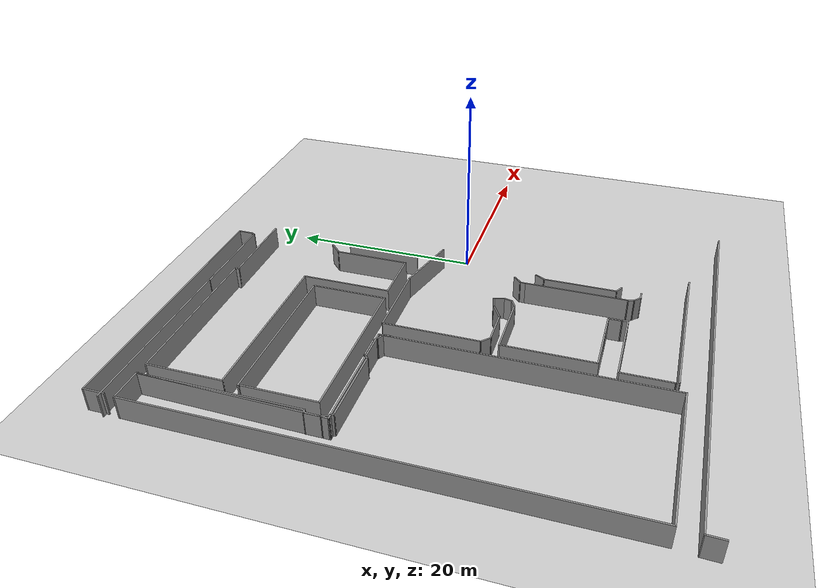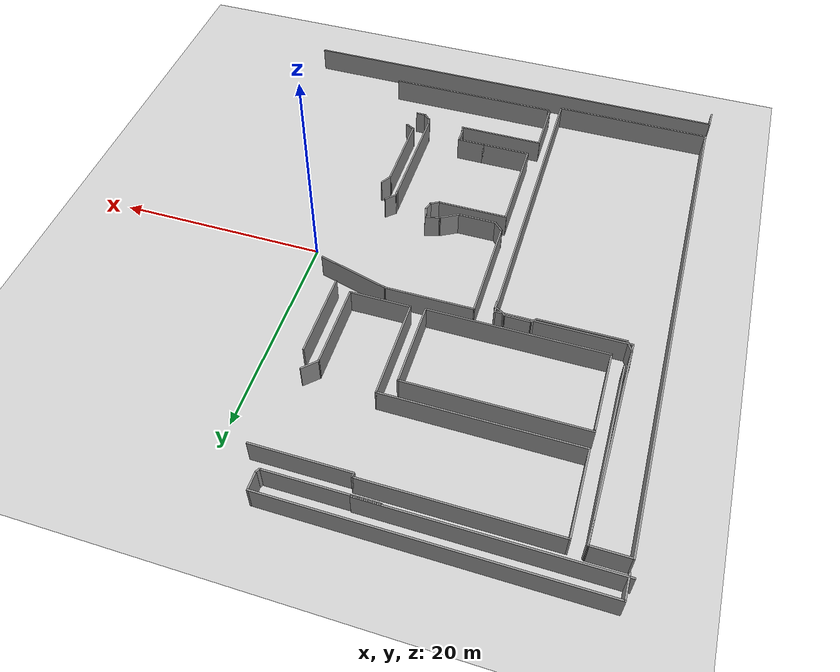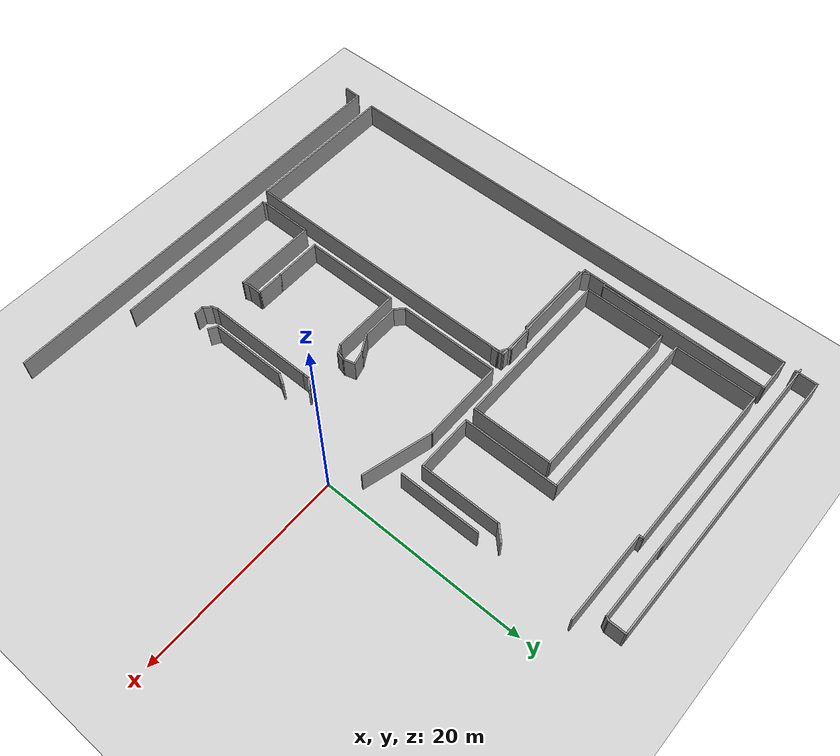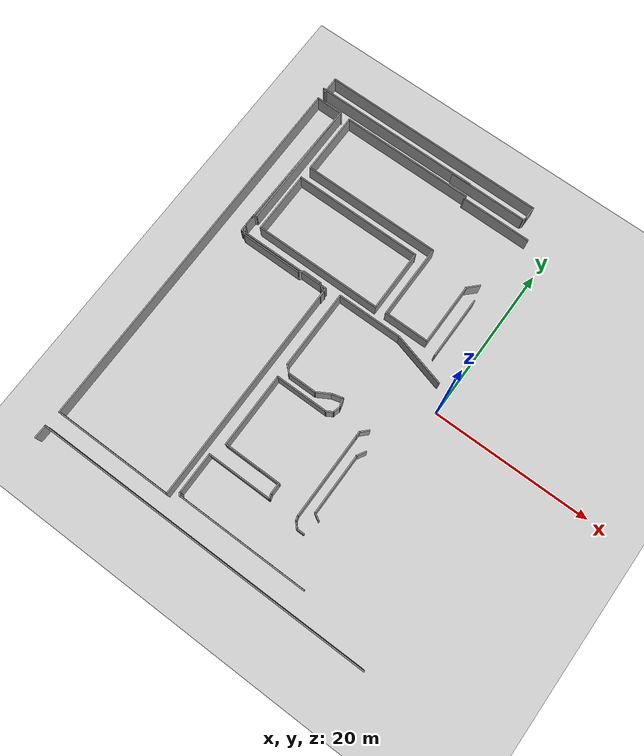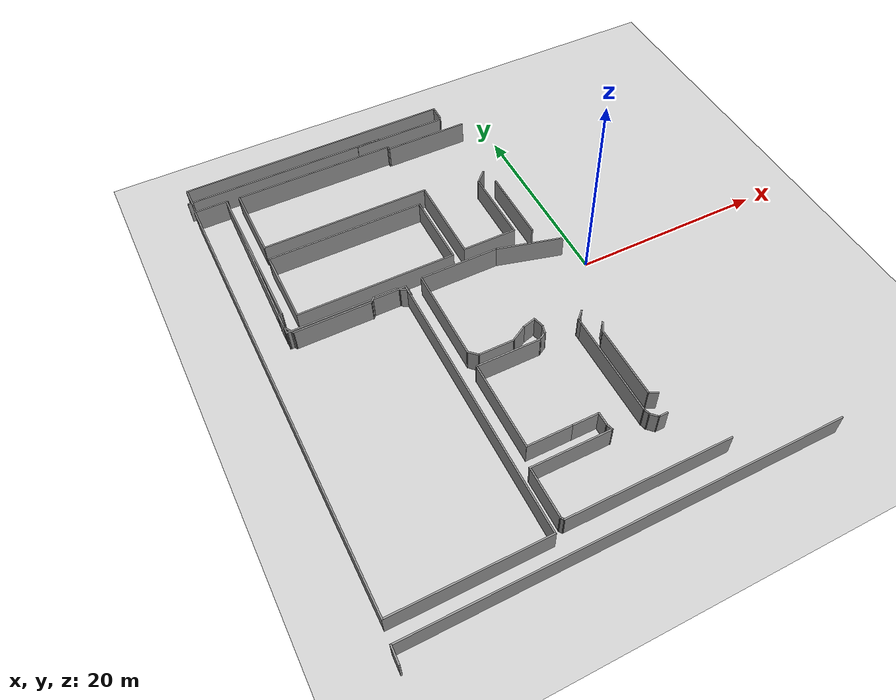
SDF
<sdf version="1.7">
 <world name="default">
  <model name="ground_plane">
   <static>1</static>
   <link name="link">
    <collision name="collision">
     <geometry><plane><normal>0 0 1</normal><size>100 100</size></plane></geometry>
     <surface><friction><ode><mu>100</mu><mu2>50</mu2></ode></friction></surface>
    </collision>
    <visual name="visual">
     <cast_shadows>0</cast_shadows>
     <geometry><plane><normal>0 0 1</normal><size>100 100</size></plane></geometry>
     <material>
      <script><uri>file://media/materials/scripts/gazebo.material</uri><name>Gazebo/Grey</name></script>
     </material>
    </visual>
   </link>
  </model>
  <model name="picture7">
   <pose>-0.026123 -1.16756 0 0 -0 0</pose>
   <link name="Wall_105">
    <collision name="Wall_105_Collision">
     <geometry><box><size>43 0.15 2.5</size></box></geometry>
     <pose>0 0 1.25 0 -0 0</pose>
    </collision>
    <visual name="Wall_105_Visual">
     <pose>0 0 1.25 0 -0 0</pose>
     <geometry><box><size>43 0.15 2.5</size></box></geometry>
     <material>
      <script><uri>file://media/materials/scripts/gazebo.material</uri><name>Gazebo/Grey</name></script>
      <ambient>1 1 1 1</ambient>
     </material>
     <meta><layer>0</layer></meta>
    </visual>
    <pose>-12.0825 -25.8744 0 0 -0 3.14159</pose>
   </link>
   <link name="Wall_106">
    <collision name="Wall_106_Collision">
     <geometry><box><size>1.75078 0.15 2.5</size></box></geometry>
     <pose>0 0 1.25 0 -0 0</pose>
    </collision>
    <visual name="Wall_106_Visual">
     <pose>0 0 1.25 0 -0 0</pose>
     <geometry><box><size>1.75078 0.15 2.5</size></box></geometry>
     <material>
      <script><uri>file://media/materials/scripts/gazebo.material</uri><name>Gazebo/Grey</name></script>
      <ambient>1 1 1 1</ambient>
     </material>
     <meta><layer>0</layer></meta>
    </visual>
    <pose>-33.5325 -26.6744 0 0 -0 -1.60204</pose>
   </link>
   <link name="Wall_108">
    <collision name="Wall_108_Collision">
     <geometry><box><size>10 0.15 2.5</size></box></geometry>
     <pose>0 0 1.25 0 -0 0</pose>
    </collision>
    <visual name="Wall_108_Visual">
     <pose>0 0 1.25 0 -0 0</pose>
     <geometry><box><size>10 0.15 2.5</size></box></geometry>
     <material>
      <script><uri>file://media/materials/scripts/gazebo.material</uri><name>Gazebo/Grey</name></script>
      <ambient>1 1 1 1</ambient>
     </material>
     <meta><layer>0</layer></meta>
    </visual>
    <pose>-16.402 0.329792 0 0 -0 -1.5708</pose>
   </link>
   <link name="Wall_109">
    <collision name="Wall_109_Collision">
     <geometry><box><size>1.25 0.15 2.5</size></box></geometry>
     <pose>0 0 1.25 0 -0 0</pose>
    </collision>
    <visual name="Wall_109_Visual">
     <pose>0 0 1.25 0 -0 0</pose>
     <geometry><box><size>1.25 0.15 2.5</size></box></geometry>
     <material>
      <script><uri>file://media/materials/scripts/gazebo.material</uri><name>Gazebo/Grey</name></script>
      <ambient>1 1 1 1</ambient>
     </material>
     <meta><layer>0</layer></meta>
    </visual>
    <pose>-16.0131 -4.98412 0 0 -0 -0.785398</pose>
   </link>
   <link name="Wall_11">
    <collision name="Wall_11_Collision">
     <geometry><box><size>3.5 0.15 2.5</size></box></geometry>
     <pose>0 0 1.25 0 -0 0</pose>
    </collision>
    <visual name="Wall_11_Visual">
     <pose>0 0 1.25 0 -0 0</pose>
     <geometry><box><size>3.5 0.15 2.5</size></box></geometry>
     <material>
      <script><uri>file://media/materials/scripts/gazebo.material</uri><name>Gazebo/Grey</name></script>
      <ambient>1 1 1 1</ambient>
     </material>
     <meta><layer>0</layer></meta>
    </visual>
    <pose>-31.6293 24.0535 0 0 -0 0</pose>
   </link>
   <link name="Wall_110">
    <collision name="Wall_110_Collision">
     <geometry><box><size>3.75 0.15 2.5</size></box></geometry>
     <pose>0 0 1.25 0 -0 0</pose>
    </collision>
    <visual name="Wall_110_Visual">
     <pose>0 0 1.25 0 -0 0</pose>
     <geometry><box><size>3.75 0.15 2.5</size></box></geometry>
     <material>
      <script><uri>file://media/materials/scripts/gazebo.material</uri><name>Gazebo/Grey</name></script>
      <ambient>1 1 1 1</ambient>
     </material>
     <meta><layer>0</layer></meta>
    </visual>
    <pose>-13.8242 -5.37303 0 0 -0 0</pose>
   </link>
   <link name="Wall_111">
    <collision name="Wall_111_Collision">
     <geometry><box><size>2 0.15 2.5</size></box></geometry>
     <pose>0 0 1.25 0 -0 0</pose>
    </collision>
    <visual name="Wall_111_Visual">
     <pose>0 0 1.25 0 -0 0</pose>
     <geometry><box><size>2 0.15 2.5</size></box></geometry>
     <material>
      <script><uri>file://media/materials/scripts/gazebo.material</uri><name>Gazebo/Grey</name></script>
      <ambient>1 1 1 1</ambient>
     </material>
     <meta><layer>0</layer></meta>
    </visual>
    <pose>-11.2231 -4.91052 0 0 -0 0.523599</pose>
   </link>
   <link name="Wall_112">
    <collision name="Wall_112_Collision">
     <geometry><box><size>1.5 0.15 2.5</size></box></geometry>
     <pose>0 0 1.25 0 -0 0</pose>
    </collision>
    <visual name="Wall_112_Visual">
     <pose>0 0 1.25 0 -0 0</pose>
     <geometry><box><size>1.5 0.15 2.5</size></box></geometry>
     <material>
      <script><uri>file://media/materials/scripts/gazebo.material</uri><name>Gazebo/Grey</name></script>
      <ambient>1 1 1 1</ambient>
     </material>
     <meta><layer>0</layer></meta>
    </visual>
    <pose>-9.77003 -4.27332 0 0 -0 0.261799</pose>
   </link>
   <link name="Wall_113">
    <collision name="Wall_113_Collision">
     <geometry><box><size>1.25 0.15 2.5</size></box></geometry>
     <pose>0 0 1.25 0 -0 0</pose>
    </collision>
    <visual name="Wall_113_Visual">
     <pose>0 0 1.25 0 -0 0</pose>
     <geometry><box><size>1.25 0.15 2.5</size></box></geometry>
     <material>
      <script><uri>file://media/materials/scripts/gazebo.material</uri><name>Gazebo/Grey</name></script>
      <ambient>1 1 1 1</ambient>
     </material>
     <meta><layer>0</layer></meta>
    </visual>
    <pose>-8.97568 -4.62988 0 0 -0 -1.309</pose>
   </link>
   <link name="Wall_114">
    <collision name="Wall_114_Collision">
     <geometry><box><size>1 0.15 2.5</size></box></geometry>
     <pose>0 0 1.25 0 -0 0</pose>
    </collision>
    <visual name="Wall_114_Visual">
     <pose>0 0 1.25 0 -0 0</pose>
     <geometry><box><size>1 0.15 2.5</size></box></geometry>
     <material>
      <script><uri>file://media/materials/scripts/gazebo.material</uri><name>Gazebo/Grey</name></script>
      <ambient>1 1 1 1</ambient>
     </material>
     <meta><layer>0</layer></meta>
    </visual>
    <pose>-8.94332 -5.57166 0 0 -0 -1.8326</pose>
   </link>
   <link name="Wall_115">
    <collision name="Wall_115_Collision">
     <geometry><box><size>1 0.15 2.5</size></box></geometry>
     <pose>0 0 1.25 0 -0 0</pose>
    </collision>
    <visual name="Wall_115_Visual">
     <pose>0 0 1.25 0 -0 0</pose>
     <geometry><box><size>1 0.15 2.5</size></box></geometry>
     <material>
      <script><uri>file://media/materials/scripts/gazebo.material</uri><name>Gazebo/Grey</name></script>
      <ambient>1 1 1 1</ambient>
     </material>
     <meta><layer>0</layer></meta>
    </visual>
    <pose>-9.42139 -6.19467 0 0 -0 -2.61799</pose>
   </link>
   <link name="Wall_116">
    <collision name="Wall_116_Collision">
     <geometry><box><size>6.75 0.15 2.5</size></box></geometry>
     <pose>0 0 1.25 0 -0 0</pose>
    </collision>
    <visual name="Wall_116_Visual">
     <pose>0 0 1.25 0 -0 0</pose>
     <geometry><box><size>6.75 0.15 2.5</size></box></geometry>
     <material>
      <script><uri>file://media/materials/scripts/gazebo.material</uri><name>Gazebo/Grey</name></script>
      <ambient>1 1 1 1</ambient>
     </material>
     <meta><layer>0</layer></meta>
    </visual>
    <pose>-13.0894 -6.40717 0 0 -0 3.14159</pose>
   </link>
   <link name="Wall_117">
    <collision name="Wall_117_Collision">
     <geometry><box><size>9.5 0.15 2.5</size></box></geometry>
     <pose>0 0 1.25 0 -0 0</pose>
    </collision>
    <visual name="Wall_117_Visual">
     <pose>0 0 1.25 0 -0 0</pose>
     <geometry><box><size>9.5 0.15 2.5</size></box></geometry>
     <material>
      <script><uri>file://media/materials/scripts/gazebo.material</uri><name>Gazebo/Grey</name></script>
      <ambient>1 1 1 1</ambient>
     </material>
     <meta><layer>0</layer></meta>
    </visual>
    <pose>-16.3894 -11.0822 0 0 -0 -1.5708</pose>
   </link>
   <link name="Wall_118">
    <collision name="Wall_118_Collision">
     <geometry><box><size>4.75 0.15 2.5</size></box></geometry>
     <pose>0 0 1.25 0 -0 0</pose>
    </collision>
    <visual name="Wall_118_Visual">
     <pose>0 0 1.25 0 -0 0</pose>
     <geometry><box><size>4.75 0.15 2.5</size></box></geometry>
     <material>
      <script><uri>file://media/materials/scripts/gazebo.material</uri><name>Gazebo/Grey</name></script>
      <ambient>1 1 1 1</ambient>
     </material>
     <meta><layer>0</layer></meta>
    </visual>
    <pose>-14.0894 -15.7572 0 0 -0 0</pose>
   </link>
   <link name="Wall_119">
    <collision name="Wall_119_Collision">
     <geometry><box><size>2.75 0.15 2.5</size></box></geometry>
     <pose>0 0 1.25 0 -0 0</pose>
    </collision>
    <visual name="Wall_119_Visual">
     <pose>0 0 1.25 0 -0 0</pose>
     <geometry><box><size>2.75 0.15 2.5</size></box></geometry>
     <material>
      <script><uri>file://media/materials/scripts/gazebo.material</uri><name>Gazebo/Grey</name></script>
      <ambient>1 1 1 1</ambient>
     </material>
     <meta><layer>0</layer></meta>
    </visual>
    <pose>-10.4894 -15.7572 0 0 -0 0</pose>
   </link>
   <link name="Wall_12">
    <collision name="Wall_12_Collision">
     <geometry><box><size>0.25 0.15 2.5</size></box></geometry>
     <pose>0 0 1.25 0 -0 0</pose>
    </collision>
    <visual name="Wall_12_Visual">
     <pose>0 0 1.25 0 -0 0</pose>
     <geometry><box><size>0.25 0.15 2.5</size></box></geometry>
     <material>
      <script><uri>file://media/materials/scripts/gazebo.material</uri><name>Gazebo/Grey</name></script>
      <ambient>1 1 1 1</ambient>
     </material>
     <meta><layer>0</layer></meta>
    </visual>
    <pose>-29.911 24.0285 0 0 -0 -0.523599</pose>
   </link>
   <link name="Wall_120">
    <collision name="Wall_120_Collision">
     <geometry><box><size>1.5 0.15 2.5</size></box></geometry>
     <pose>0 0 1.25 0 -0 0</pose>
    </collision>
    <visual name="Wall_120_Visual">
     <pose>0 0 1.25 0 -0 0</pose>
     <geometry><box><size>1.5 0.15 2.5</size></box></geometry>
     <material>
      <script><uri>file://media/materials/scripts/gazebo.material</uri><name>Gazebo/Grey</name></script>
      <ambient>1 1 1 1</ambient>
     </material>
     <meta><layer>0</layer></meta>
    </visual>
    <pose>-9.18944 -16.4322 0 0 -0 -1.5708</pose>
   </link>
   <link name="Wall_121">
    <collision name="Wall_121_Collision">
     <geometry><box><size>0.75 0.15 2.5</size></box></geometry>
     <pose>0 0 1.25 0 -0 0</pose>
    </collision>
    <visual name="Wall_121_Visual">
     <pose>0 0 1.25 0 -0 0</pose>
     <geometry><box><size>0.75 0.15 2.5</size></box></geometry>
     <material>
      <script><uri>file://media/materials/scripts/gazebo.material</uri><name>Gazebo/Grey</name></script>
      <ambient>1 1 1 1</ambient>
     </material>
     <meta><layer>0</layer></meta>
    </visual>
    <pose>-9.1118 -17.397 0 0 -0 -1.309</pose>
   </link>
   <link name="Wall_122">
    <collision name="Wall_122_Collision">
     <geometry><box><size>8.25 0.15 2.5</size></box></geometry>
     <pose>0 0 1.25 0 -0 0</pose>
    </collision>
    <visual name="Wall_122_Visual">
     <pose>0 0 1.25 0 -0 0</pose>
     <geometry><box><size>8.25 0.15 2.5</size></box></geometry>
     <material>
      <script><uri>file://media/materials/scripts/gazebo.material</uri><name>Gazebo/Grey</name></script>
      <ambient>1 1 1 1</ambient>
     </material>
     <meta><layer>0</layer></meta>
    </visual>
    <pose>-13.0842 -17.6867 0 0 -0 3.14159</pose>
   </link>
   <link name="Wall_123">
    <collision name="Wall_123_Collision">
     <geometry><box><size>5.25 0.15 2.5</size></box></geometry>
     <pose>0 0 1.25 0 -0 0</pose>
    </collision>
    <visual name="Wall_123_Visual">
     <pose>0 0 1.25 0 -0 0</pose>
     <geometry><box><size>5.25 0.15 2.5</size></box></geometry>
     <material>
      <script><uri>file://media/materials/scripts/gazebo.material</uri><name>Gazebo/Grey</name></script>
      <ambient>1 1 1 1</ambient>
     </material>
     <meta><layer>0</layer></meta>
    </visual>
    <pose>-17.1342 -20.2367 0 0 -0 -1.5708</pose>
   </link>
   <link name="Wall_124">
    <collision name="Wall_124_Collision">
     <geometry><box><size>0.5 0.15 2.5</size></box></geometry>
     <pose>0 0 1.25 0 -0 0</pose>
    </collision>
    <visual name="Wall_124_Visual">
     <pose>0 0 1.25 0 -0 0</pose>
     <geometry><box><size>0.5 0.15 2.5</size></box></geometry>
     <material>
      <script><uri>file://media/materials/scripts/gazebo.material</uri><name>Gazebo/Grey</name></script>
      <ambient>1 1 1 1</ambient>
     </material>
     <meta><layer>0</layer></meta>
    </visual>
    <pose>-17.0467 -22.9383 0 0 -0 -1.0472</pose>
   </link>
   <link name="Wall_125">
    <collision name="Wall_125_Collision">
     <geometry><box><size>16.75 0.15 2.5</size></box></geometry>
     <pose>0 0 1.25 0 -0 0</pose>
    </collision>
    <visual name="Wall_125_Visual">
     <pose>0 0 1.25 0 -0 0</pose>
     <geometry><box><size>16.75 0.15 2.5</size></box></geometry>
     <material>
      <script><uri>file://media/materials/scripts/gazebo.material</uri><name>Gazebo/Grey</name></script>
      <ambient>1 1 1 1</ambient>
     </material>
     <meta><layer>0</layer></meta>
    </visual>
    <pose>-8.65915 -23.0898 0 0 -0 0</pose>
   </link>
   <link name="Wall_131">
    <collision name="Wall_131_Collision">
     <geometry><box><size>1 0.15 2.5</size></box></geometry>
     <pose>0 0 1.25 0 -0 0</pose>
    </collision>
    <visual name="Wall_131_Visual">
     <pose>0 0 1.25 0 -0 0</pose>
     <geometry><box><size>1 0.15 2.5</size></box></geometry>
     <material>
      <script><uri>file://media/materials/scripts/gazebo.material</uri><name>Gazebo/Grey</name></script>
      <ambient>1 1 1 1</ambient>
     </material>
     <meta><layer>0</layer></meta>
    </visual>
    <pose>-4.29594 -18.4627 0 0 -0 3.14159</pose>
   </link>
   <link name="Wall_132">
    <collision name="Wall_132_Collision">
     <geometry><box><size>1 0.15 2.5</size></box></geometry>
     <pose>0 0 1.25 0 -0 0</pose>
    </collision>
    <visual name="Wall_132_Visual">
     <pose>0 0 1.25 0 -0 0</pose>
     <geometry><box><size>1 0.15 2.5</size></box></geometry>
     <material>
      <script><uri>file://media/materials/scripts/gazebo.material</uri><name>Gazebo/Grey</name></script>
      <ambient>1 1 1 1</ambient>
     </material>
     <meta><layer>0</layer></meta>
    </visual>
    <pose>-5.02146 -18.1622 0 0 -0 2.35619</pose>
   </link>
   <link name="Wall_133">
    <collision name="Wall_133_Collision">
     <geometry><box><size>0.75 0.15 2.5</size></box></geometry>
     <pose>0 0 1.25 0 -0 0</pose>
    </collision>
    <visual name="Wall_133_Visual">
     <pose>0 0 1.25 0 -0 0</pose>
     <geometry><box><size>0.75 0.15 2.5</size></box></geometry>
     <material>
      <script><uri>file://media/materials/scripts/gazebo.material</uri><name>Gazebo/Grey</name></script>
      <ambient>1 1 1 1</ambient>
     </material>
     <meta><layer>0</layer></meta>
    </visual>
    <pose>-5.39962 -17.5719 0 0 -0 1.8326</pose>
   </link>
   <link name="Wall_134">
    <collision name="Wall_134_Collision">
     <geometry><box><size>10.75 0.15 2.5</size></box></geometry>
     <pose>0 0 1.25 0 -0 0</pose>
    </collision>
    <visual name="Wall_134_Visual">
     <pose>0 0 1.25 0 -0 0</pose>
     <geometry><box><size>10.75 0.15 2.5</size></box></geometry>
     <material>
      <script><uri>file://media/materials/scripts/gazebo.material</uri><name>Gazebo/Grey</name></script>
      <ambient>1 1 1 1</ambient>
     </material>
     <meta><layer>0</layer></meta>
    </visual>
    <pose>-5.47727 -11.9821 0 0 -0 1.5708</pose>
   </link>
   <link name="Wall_135">
    <collision name="Wall_135_Collision">
     <geometry><box><size>0.75 0.15 2.5</size></box></geometry>
     <pose>0 0 1.25 0 -0 0</pose>
    </collision>
    <visual name="Wall_135_Visual">
     <pose>0 0 1.25 0 -0 0</pose>
     <geometry><box><size>0.75 0.15 2.5</size></box></geometry>
     <material>
      <script><uri>file://media/materials/scripts/gazebo.material</uri><name>Gazebo/Grey</name></script>
      <ambient>1 1 1 1</ambient>
     </material>
     <meta><layer>0</layer></meta>
    </visual>
    <pose>-5.47727 -6.38209 0 0 -0 1.5708</pose>
   </link>
   <link name="Wall_136">
    <collision name="Wall_136_Collision">
     <geometry><box><size>1.25 0.15 2.5</size></box></geometry>
     <pose>0 0 1.25 0 -0 0</pose>
    </collision>
    <visual name="Wall_136_Visual">
     <pose>0 0 1.25 0 -0 0</pose>
     <geometry><box><size>1.25 0.15 2.5</size></box></geometry>
     <material>
      <script><uri>file://media/materials/scripts/gazebo.material</uri><name>Gazebo/Grey</name></script>
      <ambient>1 1 1 1</ambient>
     </material>
     <meta><layer>0</layer></meta>
    </visual>
    <pose>-5.08836 -5.69318 0 0 -0 0.785398</pose>
   </link>
   <link name="Wall_143">
    <collision name="Wall_143_Collision">
     <geometry><box><size>7 0.15 2.5</size></box></geometry>
     <pose>0 0 1.25 0 -0 0</pose>
    </collision>
    <visual name="Wall_143_Visual">
     <pose>0 0 1.25 0 -0 0</pose>
     <geometry><box><size>7 0.15 2.5</size></box></geometry>
     <material>
      <script><uri>file://media/materials/scripts/gazebo.material</uri><name>Gazebo/Grey</name></script>
      <ambient>1 1 1 1</ambient>
     </material>
     <meta><layer>0</layer></meta>
    </visual>
    <pose>-4.89925 4.4603 0 0 -0 2.87979</pose>
   </link>
   <link name="Wall_144">
    <collision name="Wall_144_Collision">
     <geometry><box><size>8.25 0.15 2.5</size></box></geometry>
     <pose>0 0 1.25 0 -0 0</pose>
    </collision>
    <visual name="Wall_144_Visual">
     <pose>0 0 1.25 0 -0 0</pose>
     <geometry><box><size>8.25 0.15 2.5</size></box></geometry>
     <material>
      <script><uri>file://media/materials/scripts/gazebo.material</uri><name>Gazebo/Grey</name></script>
      <ambient>1 1 1 1</ambient>
     </material>
     <meta><layer>0</layer></meta>
    </visual>
    <pose>-12.2575 5.34675 0 0 -0 3.14159</pose>
   </link>
   <link name="Wall_146">
    <collision name="Wall_146_Collision">
     <geometry><box><size>1.25 0.15 2.5</size></box></geometry>
     <pose>0 0 1.25 0 -0 0</pose>
    </collision>
    <visual name="Wall_146_Visual">
     <pose>0 0 1.25 0 -0 0</pose>
     <geometry><box><size>1.25 0.15 2.5</size></box></geometry>
     <material>
      <script><uri>file://media/materials/scripts/gazebo.material</uri><name>Gazebo/Grey</name></script>
      <ambient>1 1 1 1</ambient>
     </material>
     <meta><layer>0</layer></meta>
    </visual>
    <pose>-3.90164 -7.8752 0 0 -0 -2.0944</pose>
   </link>
   <link name="Wall_147">
    <collision name="Wall_147_Collision">
     <geometry><box><size>7.75 0.15 2.5</size></box></geometry>
     <pose>0 0 1.25 0 -0 0</pose>
    </collision>
    <visual name="Wall_147_Visual">
     <pose>0 0 1.25 0 -0 0</pose>
     <geometry><box><size>7.75 0.15 2.5</size></box></geometry>
     <material>
      <script><uri>file://media/materials/scripts/gazebo.material</uri><name>Gazebo/Grey</name></script>
      <ambient>1 1 1 1</ambient>
     </material>
     <meta><layer>0</layer></meta>
    </visual>
    <pose>-4.17664 -12.1515 0 0 -0 -1.5708</pose>
   </link>
   <link name="Wall_148">
    <collision name="Wall_148_Collision">
     <geometry><box><size>1.01812 0.15 2.5</size></box></geometry>
     <pose>0 0 1.25 0 -0 0</pose>
    </collision>
    <visual name="Wall_148_Visual">
     <pose>0 0 1.25 0 -0 0</pose>
     <geometry><box><size>1.01812 0.15 2.5</size></box></geometry>
     <material>
      <script><uri>file://media/materials/scripts/gazebo.material</uri><name>Gazebo/Grey</name></script>
      <ambient>1 1 1 1</ambient>
     </material>
     <meta><layer>0</layer></meta>
    </visual>
    <pose>-3.79976 -16.1669 0 0 -0 -0.519105</pose>
   </link>
   <link name="Wall_15">
    <collision name="Wall_15_Collision">
     <geometry><box><size>16.75 0.15 2.5</size></box></geometry>
     <pose>0 0 1.25 0 -0 0</pose>
    </collision>
    <visual name="Wall_15_Visual">
     <pose>0 0 1.25 0 -0 0</pose>
     <geometry><box><size>16.75 0.15 2.5</size></box></geometry>
     <material>
      <script><uri>file://media/materials/scripts/gazebo.material</uri><name>Gazebo/Grey</name></script>
      <ambient>1 1 1 1</ambient>
     </material>
     <meta><layer>0</layer></meta>
    </visual>
    <pose>-29.9543 15.7535 0 0 -0 -1.5708</pose>
   </link>
   <link name="Wall_16">
    <collision name="Wall_16_Collision">
     <geometry><box><size>0.5 0.15 2.5</size></box></geometry>
     <pose>0 0 1.25 0 -0 0</pose>
    </collision>
    <visual name="Wall_16_Visual">
     <pose>0 0 1.25 0 -0 0</pose>
     <geometry><box><size>0.5 0.15 2.5</size></box></geometry>
     <material>
      <script><uri>file://media/materials/scripts/gazebo.material</uri><name>Gazebo/Grey</name></script>
      <ambient>1 1 1 1</ambient>
     </material>
     <meta><layer>0</layer></meta>
    </visual>
    <pose>-30.1233 7.40825 0 0 -0 -2.87979</pose>
   </link>
   <link name="Wall_17">
    <collision name="Wall_17_Collision">
     <geometry><box><size>1.75 0.15 2.5</size></box></geometry>
     <pose>0 0 1.25 0 -0 0</pose>
    </collision>
    <visual name="Wall_17_Visual">
     <pose>0 0 1.25 0 -0 0</pose>
     <geometry><box><size>1.75 0.15 2.5</size></box></geometry>
     <material>
      <script><uri>file://media/materials/scripts/gazebo.material</uri><name>Gazebo/Grey</name></script>
      <ambient>1 1 1 1</ambient>
     </material>
     <meta><layer>0</layer></meta>
    </visual>
    <pose>-30.2924 6.56296 0 0 -0 -1.5708</pose>
   </link>
   <link name="Wall_18">
    <collision name="Wall_18_Collision">
     <geometry><box><size>1.25 0.15 2.5</size></box></geometry>
     <pose>0 0 1.25 0 -0 0</pose>
    </collision>
    <visual name="Wall_18_Visual">
     <pose>0 0 1.25 0 -0 0</pose>
     <geometry><box><size>1.25 0.15 2.5</size></box></geometry>
     <material>
      <script><uri>file://media/materials/scripts/gazebo.material</uri><name>Gazebo/Grey</name></script>
      <ambient>1 1 1 1</ambient>
     </material>
     <meta><layer>0</layer></meta>
    </visual>
    <pose>-30.0174 5.28665 0 0 -0 -1.0472</pose>
   </link>
   <link name="Wall_19">
    <collision name="Wall_19_Collision">
     <geometry><box><size>8 0.15 2.5</size></box></geometry>
     <pose>0 0 1.25 0 -0 0</pose>
    </collision>
    <visual name="Wall_19_Visual">
     <pose>0 0 1.25 0 -0 0</pose>
     <geometry><box><size>8 0.15 2.5</size></box></geometry>
     <material>
      <script><uri>file://media/materials/scripts/gazebo.material</uri><name>Gazebo/Grey</name></script>
      <ambient>1 1 1 1</ambient>
     </material>
     <meta><layer>0</layer></meta>
    </visual>
    <pose>-25.8174 4.81033 0 0 -0 0</pose>
   </link>
   <link name="Wall_20">
    <collision name="Wall_20_Collision">
     <geometry><box><size>0.75 0.15 2.5</size></box></geometry>
     <pose>0 0 1.25 0 -0 0</pose>
    </collision>
    <visual name="Wall_20_Visual">
     <pose>0 0 1.25 0 -0 0</pose>
     <geometry><box><size>0.75 0.15 2.5</size></box></geometry>
     <material>
      <script><uri>file://media/materials/scripts/gazebo.material</uri><name>Gazebo/Grey</name></script>
      <ambient>1 1 1 1</ambient>
     </material>
     <meta><layer>0</layer></meta>
    </visual>
    <pose>-21.6802 5.02246 0 0 -0 0.785398</pose>
   </link>
   <link name="Wall_21">
    <collision name="Wall_21_Collision">
     <geometry><box><size>2.5 0.15 2.5</size></box></geometry>
     <pose>0 0 1.25 0 -0 0</pose>
    </collision>
    <visual name="Wall_21_Visual">
     <pose>0 0 1.25 0 -0 0</pose>
     <geometry><box><size>2.5 0.15 2.5</size></box></geometry>
     <material>
      <script><uri>file://media/materials/scripts/gazebo.material</uri><name>Gazebo/Grey</name></script>
      <ambient>1 1 1 1</ambient>
     </material>
     <meta><layer>0</layer></meta>
    </visual>
    <pose>-20.2931 5.2346 0 0 -0 0</pose>
   </link>
   <link name="Wall_22">
    <collision name="Wall_22_Collision">
     <geometry><box><size>0.15 0.15 2.5</size></box></geometry>
     <pose>0 0 1.25 0 -0 0</pose>
    </collision>
    <visual name="Wall_22_Visual">
     <pose>0 0 1.25 0 -0 0</pose>
     <geometry><box><size>0.15 0.15 2.5</size></box></geometry>
     <material>
      <script><uri>file://media/materials/scripts/gazebo.material</uri><name>Gazebo/Grey</name></script>
      <ambient>1 1 1 1</ambient>
     </material>
     <meta><layer>0</layer></meta>
    </visual>
    <pose>-19.1181 5.2346 0 0 -0 0</pose>
   </link>
   <link name="Wall_23">
    <collision name="Wall_23_Collision">
     <geometry><box><size>0.5 0.15 2.5</size></box></geometry>
     <pose>0 0 1.25 0 -0 0</pose>
    </collision>
    <visual name="Wall_23_Visual">
     <pose>0 0 1.25 0 -0 0</pose>
     <geometry><box><size>0.5 0.15 2.5</size></box></geometry>
     <material>
      <script><uri>file://media/materials/scripts/gazebo.material</uri><name>Gazebo/Grey</name></script>
      <ambient>1 1 1 1</ambient>
     </material>
     <meta><layer>0</layer></meta>
    </visual>
    <pose>-18.9944 5.11085 0 0 -0 -0.785398</pose>
   </link>
   <link name="Wall_24">
    <collision name="Wall_24_Collision">
     <geometry><box><size>1 0.15 2.5</size></box></geometry>
     <pose>0 0 1.25 0 -0 0</pose>
    </collision>
    <visual name="Wall_24_Visual">
     <pose>0 0 1.25 0 -0 0</pose>
     <geometry><box><size>1 0.15 2.5</size></box></geometry>
     <material>
      <script><uri>file://media/materials/scripts/gazebo.material</uri><name>Gazebo/Grey</name></script>
      <ambient>1 1 1 1</ambient>
     </material>
     <meta><layer>0</layer></meta>
    </visual>
    <pose>-18.5026 4.77461 0 0 -0 -0.523599</pose>
   </link>
   <link name="Wall_25">
    <collision name="Wall_25_Collision">
     <geometry><box><size>0.15 0.15 2.5</size></box></geometry>
     <pose>0 0 1.25 0 -0 0</pose>
    </collision>
    <visual name="Wall_25_Visual">
     <pose>0 0 1.25 0 -0 0</pose>
     <geometry><box><size>0.15 0.15 2.5</size></box></geometry>
     <material>
      <script><uri>file://media/materials/scripts/gazebo.material</uri><name>Gazebo/Grey</name></script>
      <ambient>1 1 1 1</ambient>
     </material>
     <meta><layer>0</layer></meta>
    </visual>
    <pose>-18.1345 4.56211 0 0 -0 0</pose>
   </link>
   <link name="Wall_26">
    <collision name="Wall_26_Collision">
     <geometry><box><size>0.75 0.15 2.5</size></box></geometry>
     <pose>0 0 1.25 0 -0 0</pose>
    </collision>
    <visual name="Wall_26_Visual">
     <pose>0 0 1.25 0 -0 0</pose>
     <geometry><box><size>0.75 0.15 2.5</size></box></geometry>
     <material>
      <script><uri>file://media/materials/scripts/gazebo.material</uri><name>Gazebo/Grey</name></script>
      <ambient>1 1 1 1</ambient>
     </material>
     <meta><layer>0</layer></meta>
    </visual>
    <pose>-18.1345 4.26211 0 0 -0 -1.5708</pose>
   </link>
   <link name="Wall_28">
    <collision name="Wall_28_Collision">
     <geometry><box><size>17 0.15 2.5</size></box></geometry>
     <pose>0 0 1.25 0 -0 0</pose>
    </collision>
    <visual name="Wall_28_Visual">
     <pose>0 0 1.25 0 -0 0</pose>
     <geometry><box><size>17 0.15 2.5</size></box></geometry>
     <material>
      <script><uri>file://media/materials/scripts/gazebo.material</uri><name>Gazebo/Grey</name></script>
      <ambient>1 1 1 1</ambient>
     </material>
     <meta><layer>0</layer></meta>
    </visual>
    <pose>-20.1858 23.9585 0 0 -0 0</pose>
   </link>
   <link name="Wall_29">
    <collision name="Wall_29_Collision">
     <geometry><box><size>0.5 0.15 2.5</size></box></geometry>
     <pose>0 0 1.25 0 -0 0</pose>
    </collision>
    <visual name="Wall_29_Visual">
     <pose>0 0 1.25 0 -0 0</pose>
     <geometry><box><size>0.5 0.15 2.5</size></box></geometry>
     <material>
      <script><uri>file://media/materials/scripts/gazebo.material</uri><name>Gazebo/Grey</name></script>
      <ambient>1 1 1 1</ambient>
     </material>
     <meta><layer>0</layer></meta>
    </visual>
    <pose>-11.7608 23.7835 0 0 -0 -1.5708</pose>
   </link>
   <link name="Wall_30">
    <collision name="Wall_30_Collision">
     <geometry><box><size>9 0.15 2.5</size></box></geometry>
     <pose>0 0 1.25 0 -0 0</pose>
    </collision>
    <visual name="Wall_30_Visual">
     <pose>0 0 1.25 0 -0 0</pose>
     <geometry><box><size>9 0.15 2.5</size></box></geometry>
     <material>
      <script><uri>file://media/materials/scripts/gazebo.material</uri><name>Gazebo/Grey</name></script>
      <ambient>1 1 1 1</ambient>
     </material>
     <meta><layer>0</layer></meta>
    </visual>
    <pose>-7.33575 23.6085 0 0 -0 0</pose>
   </link>
   <link name="Wall_5">
    <collision name="Wall_5_Collision">
     <geometry><box><size>10 0.15 2.5</size></box></geometry>
     <pose>0 0 1.25 0 -0 0</pose>
    </collision>
    <visual name="Wall_5_Visual">
     <pose>0 0 1.25 0 -0 0</pose>
     <geometry><box><size>10 0.15 2.5</size></box></geometry>
     <material>
      <script><uri>file://media/materials/scripts/gazebo.material</uri><name>Gazebo/Grey</name></script>
      <ambient>1 1 1 1</ambient>
     </material>
     <meta><layer>0</layer></meta>
    </visual>
    <pose>-9.66663 25.4359 0 0 -0 0</pose>
   </link>
   <link name="Wall_50">
    <collision name="Wall_50_Collision">
     <geometry><box><size>8 0.15 2.5</size></box></geometry>
     <pose>0 0 1.25 0 -0 0</pose>
    </collision>
    <visual name="Wall_50_Visual">
     <pose>0 0 1.25 0 -0 0</pose>
     <geometry><box><size>8 0.15 2.5</size></box></geometry>
     <material>
      <script><uri>file://media/materials/scripts/gazebo.material</uri><name>Gazebo/Grey</name></script>
      <ambient>1 1 1 1</ambient>
     </material>
     <meta><layer>0</layer></meta>
    </visual>
    <pose>-28.6108 20.0335 0 0 -0 -1.5708</pose>
   </link>
   <link name="Wall_51">
    <collision name="Wall_51_Collision">
     <geometry><box><size>17.75 0.15 2.5</size></box></geometry>
     <pose>0 0 1.25 0 -0 0</pose>
    </collision>
    <visual name="Wall_51_Visual">
     <pose>0 0 1.25 0 -0 0</pose>
     <geometry><box><size>17.75 0.15 2.5</size></box></geometry>
     <material>
      <script><uri>file://media/materials/scripts/gazebo.material</uri><name>Gazebo/Grey</name></script>
      <ambient>1 1 1 1</ambient>
     </material>
     <meta><layer>0</layer></meta>
    </visual>
    <pose>-19.8108 16.1085 0 0 -0 0</pose>
   </link>
   <link name="Wall_52">
    <collision name="Wall_52_Collision">
     <geometry><box><size>9.5 0.15 2.5</size></box></geometry>
     <pose>0 0 1.25 0 -0 0</pose>
    </collision>
    <visual name="Wall_52_Visual">
     <pose>0 0 1.25 0 -0 0</pose>
     <geometry><box><size>9.5 0.15 2.5</size></box></geometry>
     <material>
      <script><uri>file://media/materials/scripts/gazebo.material</uri><name>Gazebo/Grey</name></script>
      <ambient>1 1 1 1</ambient>
     </material>
     <meta><layer>0</layer></meta>
    </visual>
    <pose>-11.0108 11.4335 0 0 -0 -1.5708</pose>
   </link>
   <link name="Wall_53">
    <collision name="Wall_53_Collision">
     <geometry><box><size>5.75 0.15 2.5</size></box></geometry>
     <pose>0 0 1.25 0 -0 0</pose>
    </collision>
    <visual name="Wall_53_Visual">
     <pose>0 0 1.25 0 -0 0</pose>
     <geometry><box><size>5.75 0.15 2.5</size></box></geometry>
     <material>
      <script><uri>file://media/materials/scripts/gazebo.material</uri><name>Gazebo/Grey</name></script>
      <ambient>1 1 1 1</ambient>
     </material>
     <meta><layer>0</layer></meta>
    </visual>
    <pose>-8.21075 6.75849 0 0 -0 0</pose>
   </link>
   <link name="Wall_54">
    <collision name="Wall_54_Collision">
     <geometry><box><size>8 0.15 2.5</size></box></geometry>
     <pose>0 0 1.25 0 -0 0</pose>
    </collision>
    <visual name="Wall_54_Visual">
     <pose>0 0 1.25 0 -0 0</pose>
     <geometry><box><size>8 0.15 2.5</size></box></geometry>
     <material>
      <script><uri>file://media/materials/scripts/gazebo.material</uri><name>Gazebo/Grey</name></script>
      <ambient>1 1 1 1</ambient>
     </material>
     <meta><layer>0</layer></meta>
    </visual>
    <pose>-5.41075 10.6835 0 0 -0 1.5708</pose>
   </link>
   <link name="Wall_55">
    <collision name="Wall_55_Collision">
     <geometry><box><size>1.75 0.15 2.5</size></box></geometry>
     <pose>0 0 1.25 0 -0 0</pose>
    </collision>
    <visual name="Wall_55_Visual">
     <pose>0 0 1.25 0 -0 0</pose>
     <geometry><box><size>1.75 0.15 2.5</size></box></geometry>
     <material>
      <script><uri>file://media/materials/scripts/gazebo.material</uri><name>Gazebo/Grey</name></script>
      <ambient>1 1 1 1</ambient>
     </material>
     <meta><layer>0</layer></meta>
    </visual>
    <pose>-4.84507 15.1742 0 0 -0 0.785398</pose>
   </link>
   <link name="Wall_6">
    <collision name="Wall_6_Collision">
     <geometry><box><size>0.5 0.15 2.5</size></box></geometry>
     <pose>0 0 1.25 0 -0 0</pose>
    </collision>
    <visual name="Wall_6_Visual">
     <pose>0 0 1.25 0 -0 0</pose>
     <geometry><box><size>0.5 0.15 2.5</size></box></geometry>
     <material>
      <script><uri>file://media/materials/scripts/gazebo.material</uri><name>Gazebo/Grey</name></script>
      <ambient>1 1 1 1</ambient>
     </material>
     <meta><layer>0</layer></meta>
    </visual>
    <pose>-4.65413 25.5874 0 0 -0 1.0472</pose>
   </link>
   <link name="Wall_63">
    <collision name="Wall_63_Collision">
     <geometry><box><size>21.5 0.15 2.5</size></box></geometry>
     <pose>0 0 1.25 0 -0 0</pose>
    </collision>
    <visual name="Wall_63_Visual">
     <pose>0 0 1.25 0 -0 0</pose>
     <geometry><box><size>21.5 0.15 2.5</size></box></geometry>
     <material>
      <script><uri>file://media/materials/scripts/gazebo.material</uri><name>Gazebo/Grey</name></script>
      <ambient>1 1 1 1</ambient>
     </material>
     <meta><layer>0</layer></meta>
    </visual>
    <pose>-22.8792 25.5157 0 0 -0 3.14159</pose>
   </link>
   <link name="Wall_66">
    <collision name="Wall_66_Collision">
     <geometry><box><size>48 0.15 2.5</size></box></geometry>
     <pose>0 0 1.25 0 -0 0</pose>
    </collision>
    <visual name="Wall_66_Visual">
     <pose>0 0 1.25 0 -0 0</pose>
     <geometry><box><size>48 0.15 2.5</size></box></geometry>
     <material>
      <script><uri>file://media/materials/scripts/gazebo.material</uri><name>Gazebo/Grey</name></script>
      <ambient>1 1 1 1</ambient>
     </material>
     <meta><layer>0</layer></meta>
    </visual>
    <pose>-33.3043 0.128546 0 0 -0 -1.5708</pose>
   </link>
   <link name="Wall_67">
    <collision name="Wall_67_Collision">
     <geometry><box><size>15.25 0.15 2.5</size></box></geometry>
     <pose>0 0 1.25 0 -0 0</pose>
    </collision>
    <visual name="Wall_67_Visual">
     <pose>0 0 1.25 0 -0 0</pose>
     <geometry><box><size>15.25 0.15 2.5</size></box></geometry>
     <material>
      <script><uri>file://media/materials/scripts/gazebo.material</uri><name>Gazebo/Grey</name></script>
      <ambient>1 1 1 1</ambient>
     </material>
     <meta><layer>0</layer></meta>
    </visual>
    <pose>-25.7543 -23.7965 0 0 -0 0</pose>
   </link>
   <link name="Wall_68">
    <collision name="Wall_68_Collision">
     <geometry><box><size>29 0.15 2.5</size></box></geometry>
     <pose>0 0 1.25 0 -0 0</pose>
    </collision>
    <visual name="Wall_68_Visual">
     <pose>0 0 1.25 0 -0 0</pose>
     <geometry><box><size>29 0.15 2.5</size></box></geometry>
     <material>
      <script><uri>file://media/materials/scripts/gazebo.material</uri><name>Gazebo/Grey</name></script>
      <ambient>1 1 1 1</ambient>
     </material>
     <meta><layer>0</layer></meta>
    </visual>
    <pose>-18.2043 -9.37145 0 0 -0 1.5708</pose>
   </link>
   <link name="Wall_69">
    <collision name="Wall_69_Collision">
     <geometry><box><size>12.25 0.15 2.5</size></box></geometry>
     <pose>0 0 1.25 0 -0 0</pose>
    </collision>
    <visual name="Wall_69_Visual">
     <pose>0 0 1.25 0 -0 0</pose>
     <geometry><box><size>12.25 0.15 2.5</size></box></geometry>
     <material>
      <script><uri>file://media/materials/scripts/gazebo.material</uri><name>Gazebo/Grey</name></script>
      <ambient>1 1 1 1</ambient>
     </material>
     <meta><layer>0</layer></meta>
    </visual>
    <pose>-24.2543 5.05355 0 0 -0 3.14159</pose>
   </link>
   <link name="Wall_7">
    <collision name="Wall_7_Collision">
     <geometry><box><size>1.75 0.15 2.5</size></box></geometry>
     <pose>0 0 1.25 0 -0 0</pose>
    </collision>
    <visual name="Wall_7_Visual">
     <pose>0 0 1.25 0 -0 0</pose>
     <geometry><box><size>1.75 0.15 2.5</size></box></geometry>
     <material>
      <script><uri>file://media/materials/scripts/gazebo.material</uri><name>Gazebo/Grey</name></script>
      <ambient>1 1 1 1</ambient>
     </material>
     <meta><layer>0</layer></meta>
    </visual>
    <pose>-4.56663 26.539 0 0 -0 1.5708</pose>
   </link>
   <link name="Wall_70">
    <collision name="Wall_70_Collision">
     <geometry><box><size>19.1532 0.15 2.5</size></box></geometry>
     <pose>0 0 1.25 0 -0 0</pose>
    </collision>
    <visual name="Wall_70_Visual">
     <pose>0 0 1.25 0 -0 0</pose>
     <geometry><box><size>19.1532 0.15 2.5</size></box></geometry>
     <material>
      <script><uri>file://media/materials/scripts/gazebo.material</uri><name>Gazebo/Grey</name></script>
      <ambient>1 1 1 1</ambient>
     </material>
     <meta><layer>0</layer></meta>
    </visual>
    <pose>-30.1293 14.5535 0 0 -0 1.55238</pose>
   </link>
   <link name="Wall_72">
    <collision name="Wall_72_Collision">
     <geometry><box><size>7.75 0.15 2.5</size></box></geometry>
     <pose>0 0 1.25 0 -0 0</pose>
    </collision>
    <visual name="Wall_72_Visual">
     <pose>0 0 1.25 0 -0 0</pose>
     <geometry><box><size>7.75 0.15 2.5</size></box></geometry>
     <material>
      <script><uri>file://media/materials/scripts/gazebo.material</uri><name>Gazebo/Grey</name></script>
      <ambient>1 1 1 1</ambient>
     </material>
     <meta><layer>0</layer></meta>
    </visual>
    <pose>-28.7117 10.4121 0 0 -0 -1.5708</pose>
   </link>
   <link name="Wall_73">
    <collision name="Wall_73_Collision">
     <geometry><box><size>16.5 0.15 2.5</size></box></geometry>
     <pose>0 0 1.25 0 -0 0</pose>
    </collision>
    <visual name="Wall_73_Visual">
     <pose>0 0 1.25 0 -0 0</pose>
     <geometry><box><size>16.5 0.15 2.5</size></box></geometry>
     <material>
      <script><uri>file://media/materials/scripts/gazebo.material</uri><name>Gazebo/Grey</name></script>
      <ambient>1 1 1 1</ambient>
     </material>
     <meta><layer>0</layer></meta>
    </visual>
    <pose>-20.5367 6.61207 0 0 -0 0</pose>
   </link>
   <link name="Wall_74">
    <collision name="Wall_74_Collision">
     <geometry><box><size>8 0.15 2.5</size></box></geometry>
     <pose>0 0 1.25 0 -0 0</pose>
    </collision>
    <visual name="Wall_74_Visual">
     <pose>0 0 1.25 0 -0 0</pose>
     <geometry><box><size>8 0.15 2.5</size></box></geometry>
     <material>
      <script><uri>file://media/materials/scripts/gazebo.material</uri><name>Gazebo/Grey</name></script>
      <ambient>1 1 1 1</ambient>
     </material>
     <meta><layer>0</layer></meta>
    </visual>
    <pose>-12.3617 10.5371 0 0 -0 1.5708</pose>
   </link>
   <link name="Wall_75">
    <collision name="Wall_75_Collision">
     <geometry><box><size>16.5 0.15 2.5</size></box></geometry>
     <pose>0 0 1.25 0 -0 0</pose>
    </collision>
    <visual name="Wall_75_Visual">
     <pose>0 0 1.25 0 -0 0</pose>
     <geometry><box><size>16.5 0.15 2.5</size></box></geometry>
     <material>
      <script><uri>file://media/materials/scripts/gazebo.material</uri><name>Gazebo/Grey</name></script>
      <ambient>1 1 1 1</ambient>
     </material>
     <meta><layer>0</layer></meta>
    </visual>
    <pose>-20.5367 14.4621 0 0 -0 3.14159</pose>
   </link>
   <link name="Wall_8">
    <collision name="Wall_8_Collision">
     <geometry><box><size>28.75 0.15 2.5</size></box></geometry>
     <pose>0 0 1.25 0 -0 0</pose>
    </collision>
    <visual name="Wall_8_Visual">
     <pose>0 0 1.25 0 -0 0</pose>
     <geometry><box><size>28.75 0.15 2.5</size></box></geometry>
     <material>
      <script><uri>file://media/materials/scripts/gazebo.material</uri><name>Gazebo/Grey</name></script>
      <ambient>1 1 1 1</ambient>
     </material>
     <meta><layer>0</layer></meta>
    </visual>
    <pose>-18.8666 27.339 0 0 -0 3.14159</pose>
   </link>
   <link name="Wall_9">
    <collision name="Wall_9_Collision">
     <geometry><box><size>2.25 0.15 2.5</size></box></geometry>
     <pose>0 0 1.25 0 -0 0</pose>
    </collision>
    <visual name="Wall_9_Visual">
     <pose>0 0 1.25 0 -0 0</pose>
     <geometry><box><size>2.25 0.15 2.5</size></box></geometry>
     <material>
      <script><uri>file://media/materials/scripts/gazebo.material</uri><name>Gazebo/Grey</name></script>
      <ambient>1 1 1 1</ambient>
     </material>
     <meta><layer>0</layer></meta>
    </visual>
    <pose>-33.1666 26.289 0 0 -0 -1.5708</pose>
   </link>
   <link name="Wall_96">
    <collision name="Wall_96_Collision">
     <geometry><box><size>8 0.15 2.5</size></box></geometry>
     <pose>0 0 1.25 0 -0 0</pose>
    </collision>
    <visual name="Wall_96_Visual">
     <pose>0 0 1.25 0 -0 0</pose>
     <geometry><box><size>8 0.15 2.5</size></box></geometry>
     <material>
      <script><uri>file://media/materials/scripts/gazebo.material</uri><name>Gazebo/Grey</name></script>
      <ambient>1 1 1 1</ambient>
     </material>
     <meta><layer>0</layer></meta>
    </visual>
    <pose>-3.76497 9.89447 0 0 -0 1.5708</pose>
   </link>
   <static>1</static>
  </model>
 </world>
</sdf>
